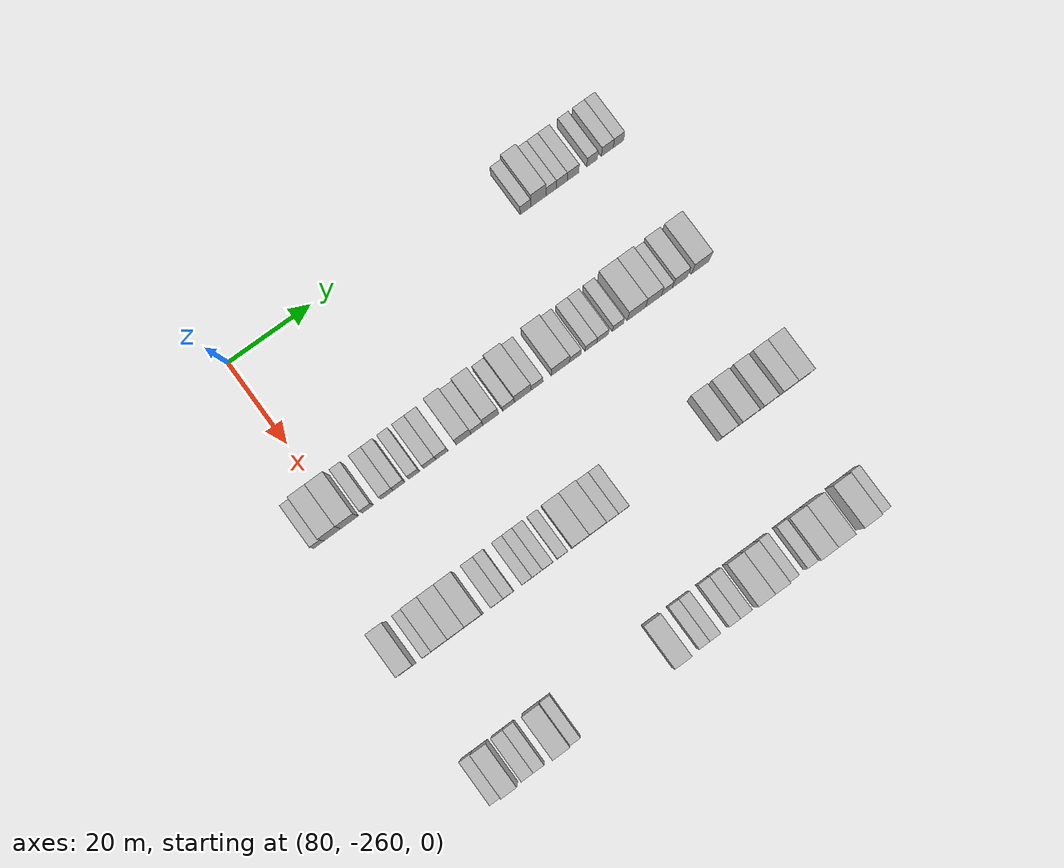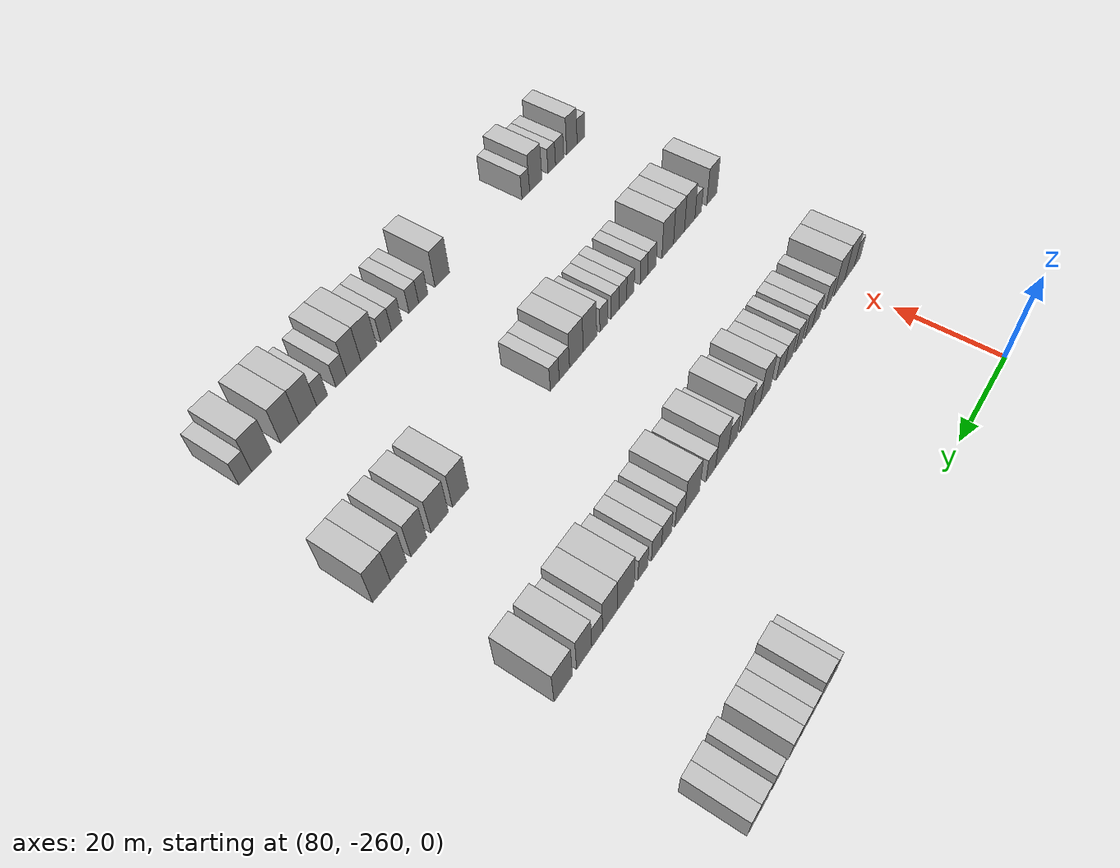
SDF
<sdf version="1.6">
 <world name="default">
  <model name="building_533">
   <static>1</static>
   <pose>85.0000 -194.1184 0 0.000000 0.000000 0.000000</pose>
   <link name="link">
    <pose>0 0 3.00 0 0 0</pose>
    <collision name="collision"><geometry><box><size>10.0000 2.6857 6.0000</size></box></geometry></collision>
    <visual name="visual">
     <cast_shadows>0</cast_shadows>
     <geometry><box><size>10.0000 2.6857 6.0000</size></box></geometry>
     <material>
      <script>
       <uri>model://HANNAS_wall/materials/scripts</uri>
       <uri>model://HANNAS_wall/materials/textures</uri>
       <name>vrc/HANNAS_wall</name>
      </script>
     </material>
    </visual>
   </link>
  </model>
  <model name="building_534">
   <static>1</static>
   <pose>85.0000 -190.9029 0 0.000000 0.000000 0.000000</pose>
   <link name="link">
    <pose>0 0 4.50 0 0 0</pose>
    <collision name="collision"><geometry><box><size>10.0000 3.7452 9.0000</size></box></geometry></collision>
    <visual name="visual">
     <cast_shadows>0</cast_shadows>
     <geometry><box><size>10.0000 3.7452 9.0000</size></box></geometry>
     <material>
      <script>
       <uri>model://HANNAS_wall/materials/scripts</uri>
       <uri>model://HANNAS_wall/materials/textures</uri>
       <name>vrc/HANNAS_wall</name>
      </script>
     </material>
    </visual>
   </link>
  </model>
  <model name="building_535">
   <static>1</static>
   <pose>85.0000 -187.7351 0 0.000000 0.000000 0.000000</pose>
   <link name="link">
    <pose>0 0 3.00 0 0 0</pose>
    <collision name="collision"><geometry><box><size>10.0000 2.5904 6.0000</size></box></geometry></collision>
    <visual name="visual">
     <cast_shadows>0</cast_shadows>
     <geometry><box><size>10.0000 2.5904 6.0000</size></box></geometry>
     <material>
      <script>
       <uri>model://HANNAS_wall/materials/scripts</uri>
       <uri>model://HANNAS_wall/materials/textures</uri>
       <name>vrc/HANNAS_wall</name>
      </script>
     </material>
    </visual>
   </link>
  </model>
  <model name="building_536">
   <static>1</static>
   <pose>85.0000 -185.1059 0 0.000000 0.000000 0.000000</pose>
   <link name="link">
    <pose>0 0 3.00 0 0 0</pose>
    <collision name="collision"><geometry><box><size>10.0000 2.6680 6.0000</size></box></geometry></collision>
    <visual name="visual">
     <cast_shadows>0</cast_shadows>
     <geometry><box><size>10.0000 2.6680 6.0000</size></box></geometry>
     <material>
      <script>
       <uri>model://HANNAS_wall/materials/scripts</uri>
       <uri>model://HANNAS_wall/materials/textures</uri>
       <name>vrc/HANNAS_wall</name>
      </script>
     </material>
    </visual>
   </link>
  </model>
  <model name="building_537">
   <static>1</static>
   <pose>85.0000 -182.3217 0 0.000000 0.000000 0.000000</pose>
   <link name="link">
    <pose>0 0 3.00 0 0 0</pose>
    <collision name="collision"><geometry><box><size>10.0000 2.9004 6.0000</size></box></geometry></collision>
    <visual name="visual">
     <cast_shadows>0</cast_shadows>
     <geometry><box><size>10.0000 2.9004 6.0000</size></box></geometry>
     <material>
      <script>
       <uri>model://HANNAS_wall/materials/scripts</uri>
       <uri>model://HANNAS_wall/materials/textures</uri>
       <name>vrc/HANNAS_wall</name>
      </script>
     </material>
    </visual>
   </link>
  </model>
  <model name="building_538">
   <static>1</static>
   <pose>85.0000 -177.5749 0 0.000000 0.000000 0.000000</pose>
   <link name="link">
    <pose>0 0 3.00 0 0 0</pose>
    <collision name="collision"><geometry><box><size>10.0000 2.5933 6.0000</size></box></geometry></collision>
    <visual name="visual">
     <cast_shadows>0</cast_shadows>
     <geometry><box><size>10.0000 2.5933 6.0000</size></box></geometry>
     <material>
      <script>
       <uri>model://HANNAS_wall/materials/scripts</uri>
       <uri>model://HANNAS_wall/materials/textures</uri>
       <name>vrc/HANNAS_wall</name>
      </script>
     </material>
    </visual>
   </link>
  </model>
  <model name="building_539">
   <static>1</static>
   <pose>85.0000 -173.7849 0 0.000000 0.000000 0.000000</pose>
   <link name="link">
    <pose>0 0 3.00 0 0 0</pose>
    <collision name="collision"><geometry><box><size>10.0000 2.9866 6.0000</size></box></geometry></collision>
    <visual name="visual">
     <cast_shadows>0</cast_shadows>
     <geometry><box><size>10.0000 2.9866 6.0000</size></box></geometry>
     <material>
      <script>
       <uri>model://HANNAS_wall/materials/scripts</uri>
       <uri>model://HANNAS_wall/materials/textures</uri>
       <name>vrc/HANNAS_wall</name>
      </script>
     </material>
    </visual>
   </link>
  </model>
  <model name="building_540">
   <static>1</static>
   <pose>85.0000 -170.9973 0 0.000000 0.000000 0.000000</pose>
   <link name="link">
    <pose>0 0 3.00 0 0 0</pose>
    <collision name="collision"><geometry><box><size>10.0000 2.5887 6.0000</size></box></geometry></collision>
    <visual name="visual">
     <cast_shadows>0</cast_shadows>
     <geometry><box><size>10.0000 2.5887 6.0000</size></box></geometry>
     <material>
      <script>
       <uri>model://HANNAS_wall/materials/scripts</uri>
       <uri>model://HANNAS_wall/materials/textures</uri>
       <name>vrc/HANNAS_wall</name>
      </script>
     </material>
    </visual>
   </link>
  </model>
  <model name="building_751">
   <static>1</static>
   <pose>115.0000 -266.2238 0 0.000000 0.000000 0.000000</pose>
   <link name="link">
    <pose>0 0 3.00 0 0 0</pose>
    <collision name="collision"><geometry><box><size>10.0000 2.4427 6.0000</size></box></geometry></collision>
    <visual name="visual">
     <cast_shadows>0</cast_shadows>
     <geometry><box><size>10.0000 2.4427 6.0000</size></box></geometry>
     <material>
      <script>
       <uri>model://HANNAS_wall/materials/scripts</uri>
       <uri>model://HANNAS_wall/materials/textures</uri>
       <name>vrc/HANNAS_wall</name>
      </script>
     </material>
    </visual>
   </link>
  </model>
  <model name="building_752">
   <static>1</static>
   <pose>115.0000 -262.9527 0 0.000000 0.000000 0.000000</pose>
   <link name="link">
    <pose>0 0 4.50 0 0 0</pose>
    <collision name="collision"><geometry><box><size>10.0000 4.0997 9.0000</size></box></geometry></collision>
    <visual name="visual">
     <cast_shadows>0</cast_shadows>
     <geometry><box><size>10.0000 4.0997 9.0000</size></box></geometry>
     <material>
      <script>
       <uri>model://HANNAS_wall/materials/scripts</uri>
       <uri>model://HANNAS_wall/materials/textures</uri>
       <name>vrc/HANNAS_wall</name>
      </script>
     </material>
    </visual>
   </link>
  </model>
  <model name="building_753">
   <static>1</static>
   <pose>115.0000 -258.8014 0 0.000000 0.000000 0.000000</pose>
   <link name="link">
    <pose>0 0 4.50 0 0 0</pose>
    <collision name="collision"><geometry><box><size>10.0000 4.2029 9.0000</size></box></geometry></collision>
    <visual name="visual">
     <cast_shadows>0</cast_shadows>
     <geometry><box><size>10.0000 4.2029 9.0000</size></box></geometry>
     <material>
      <script>
       <uri>model://HANNAS_wall/materials/scripts</uri>
       <uri>model://HANNAS_wall/materials/textures</uri>
       <name>vrc/HANNAS_wall</name>
      </script>
     </material>
    </visual>
   </link>
  </model>
  <model name="building_754">
   <static>1</static>
   <pose>115.0000 -254.4126 0 0.000000 0.000000 0.000000</pose>
   <link name="link">
    <pose>0 0 3.00 0 0 0</pose>
    <collision name="collision"><geometry><box><size>10.0000 2.5745 6.0000</size></box></geometry></collision>
    <visual name="visual">
     <cast_shadows>0</cast_shadows>
     <geometry><box><size>10.0000 2.5745 6.0000</size></box></geometry>
     <material>
      <script>
       <uri>model://HANNAS_wall/materials/scripts</uri>
       <uri>model://HANNAS_wall/materials/textures</uri>
       <name>vrc/HANNAS_wall</name>
      </script>
     </material>
    </visual>
   </link>
  </model>
  <model name="building_755">
   <static>1</static>
   <pose>115.0000 -249.6654 0 0.000000 0.000000 0.000000</pose>
   <link name="link">
    <pose>0 0 3.00 0 0 0</pose>
    <collision name="collision"><geometry><box><size>10.0000 2.9199 6.0000</size></box></geometry></collision>
    <visual name="visual">
     <cast_shadows>0</cast_shadows>
     <geometry><box><size>10.0000 2.9199 6.0000</size></box></geometry>
     <material>
      <script>
       <uri>model://HANNAS_wall/materials/scripts</uri>
       <uri>model://HANNAS_wall/materials/textures</uri>
       <name>vrc/HANNAS_wall</name>
      </script>
     </material>
    </visual>
   </link>
  </model>
  <model name="building_756">
   <static>1</static>
   <pose>115.0000 -246.8089 0 0.000000 0.000000 0.000000</pose>
   <link name="link">
    <pose>0 0 3.00 0 0 0</pose>
    <collision name="collision"><geometry><box><size>10.0000 2.7931 6.0000</size></box></geometry></collision>
    <visual name="visual">
     <cast_shadows>0</cast_shadows>
     <geometry><box><size>10.0000 2.7931 6.0000</size></box></geometry>
     <material>
      <script>
       <uri>model://HANNAS_wall/materials/scripts</uri>
       <uri>model://HANNAS_wall/materials/textures</uri>
       <name>vrc/HANNAS_wall</name>
      </script>
     </material>
    </visual>
   </link>
  </model>
  <model name="building_757">
   <static>1</static>
   <pose>115.0000 -243.1305 0 0.000000 0.000000 0.000000</pose>
   <link name="link">
    <pose>0 0 3.00 0 0 0</pose>
    <collision name="collision"><geometry><box><size>10.0000 2.5636 6.0000</size></box></geometry></collision>
    <visual name="visual">
     <cast_shadows>0</cast_shadows>
     <geometry><box><size>10.0000 2.5636 6.0000</size></box></geometry>
     <material>
      <script>
       <uri>model://HANNAS_wall/materials/scripts</uri>
       <uri>model://HANNAS_wall/materials/textures</uri>
       <name>vrc/HANNAS_wall</name>
      </script>
     </material>
    </visual>
   </link>
  </model>
  <model name="building_758">
   <static>1</static>
   <pose>115.0000 -239.3689 0 0.000000 0.000000 0.000000</pose>
   <link name="link">
    <pose>0 0 3.00 0 0 0</pose>
    <collision name="collision"><geometry><box><size>10.0000 2.9597 6.0000</size></box></geometry></collision>
    <visual name="visual">
     <cast_shadows>0</cast_shadows>
     <geometry><box><size>10.0000 2.9597 6.0000</size></box></geometry>
     <material>
      <script>
       <uri>model://HANNAS_wall/materials/scripts</uri>
       <uri>model://HANNAS_wall/materials/textures</uri>
       <name>vrc/HANNAS_wall</name>
      </script>
     </material>
    </visual>
   </link>
  </model>
  <model name="building_759">
   <static>1</static>
   <pose>115.0000 -236.4321 0 0.000000 0.000000 0.000000</pose>
   <link name="link">
    <pose>0 0 3.00 0 0 0</pose>
    <collision name="collision"><geometry><box><size>10.0000 2.9137 6.0000</size></box></geometry></collision>
    <visual name="visual">
     <cast_shadows>0</cast_shadows>
     <geometry><box><size>10.0000 2.9137 6.0000</size></box></geometry>
     <material>
      <script>
       <uri>model://HANNAS_wall/materials/scripts</uri>
       <uri>model://HANNAS_wall/materials/textures</uri>
       <name>vrc/HANNAS_wall</name>
      </script>
     </material>
    </visual>
   </link>
  </model>
  <model name="building_760">
   <static>1</static>
   <pose>115.0000 -231.1747 0 0.000000 0.000000 0.000000</pose>
   <link name="link">
    <pose>0 0 4.50 0 0 0</pose>
    <collision name="collision"><geometry><box><size>10.0000 3.6012 9.0000</size></box></geometry></collision>
    <visual name="visual">
     <cast_shadows>0</cast_shadows>
     <geometry><box><size>10.0000 3.6012 9.0000</size></box></geometry>
     <material>
      <script>
       <uri>model://HANNAS_wall/materials/scripts</uri>
       <uri>model://HANNAS_wall/materials/textures</uri>
       <name>vrc/HANNAS_wall</name>
      </script>
     </material>
    </visual>
   </link>
  </model>
  <model name="building_761">
   <static>1</static>
   <pose>115.0000 -227.8991 0 0.000000 0.000000 0.000000</pose>
   <link name="link">
    <pose>0 0 3.00 0 0 0</pose>
    <collision name="collision"><geometry><box><size>10.0000 2.9499 6.0000</size></box></geometry></collision>
    <visual name="visual">
     <cast_shadows>0</cast_shadows>
     <geometry><box><size>10.0000 2.9499 6.0000</size></box></geometry>
     <material>
      <script>
       <uri>model://HANNAS_wall/materials/scripts</uri>
       <uri>model://HANNAS_wall/materials/textures</uri>
       <name>vrc/HANNAS_wall</name>
      </script>
     </material>
    </visual>
   </link>
  </model>
  <model name="building_762">
   <static>1</static>
   <pose>115.0000 -224.5238 0 0.000000 0.000000 0.000000</pose>
   <link name="link">
    <pose>0 0 4.50 0 0 0</pose>
    <collision name="collision"><geometry><box><size>10.0000 3.8007 9.0000</size></box></geometry></collision>
    <visual name="visual">
     <cast_shadows>0</cast_shadows>
     <geometry><box><size>10.0000 3.8007 9.0000</size></box></geometry>
     <material>
      <script>
       <uri>model://HANNAS_wall/materials/scripts</uri>
       <uri>model://HANNAS_wall/materials/textures</uri>
       <name>vrc/HANNAS_wall</name>
      </script>
     </material>
    </visual>
   </link>
  </model>
  <model name="building_763">
   <static>1</static>
   <pose>115.0000 -220.1793 0 0.000000 0.000000 0.000000</pose>
   <link name="link">
    <pose>0 0 3.00 0 0 0</pose>
    <collision name="collision"><geometry><box><size>10.0000 2.8882 6.0000</size></box></geometry></collision>
    <visual name="visual">
     <cast_shadows>0</cast_shadows>
     <geometry><box><size>10.0000 2.8882 6.0000</size></box></geometry>
     <material>
      <script>
       <uri>model://HANNAS_wall/materials/scripts</uri>
       <uri>model://HANNAS_wall/materials/textures</uri>
       <name>vrc/HANNAS_wall</name>
      </script>
     </material>
    </visual>
   </link>
  </model>
  <model name="building_764">
   <static>1</static>
   <pose>115.0000 -216.6858 0 0.000000 0.000000 0.000000</pose>
   <link name="link">
    <pose>0 0 4.50 0 0 0</pose>
    <collision name="collision"><geometry><box><size>10.0000 4.0989 9.0000</size></box></geometry></collision>
    <visual name="visual">
     <cast_shadows>0</cast_shadows>
     <geometry><box><size>10.0000 4.0989 9.0000</size></box></geometry>
     <material>
      <script>
       <uri>model://HANNAS_wall/materials/scripts</uri>
       <uri>model://HANNAS_wall/materials/textures</uri>
       <name>vrc/HANNAS_wall</name>
      </script>
     </material>
    </visual>
   </link>
  </model>
  <model name="building_765">
   <static>1</static>
   <pose>115.0000 -213.1814 0 0.000000 0.000000 0.000000</pose>
   <link name="link">
    <pose>0 0 3.00 0 0 0</pose>
    <collision name="collision"><geometry><box><size>10.0000 2.9099 6.0000</size></box></geometry></collision>
    <visual name="visual">
     <cast_shadows>0</cast_shadows>
     <geometry><box><size>10.0000 2.9099 6.0000</size></box></geometry>
     <material>
      <script>
       <uri>model://HANNAS_wall/materials/scripts</uri>
       <uri>model://HANNAS_wall/materials/textures</uri>
       <name>vrc/HANNAS_wall</name>
      </script>
     </material>
    </visual>
   </link>
  </model>
  <model name="building_766">
   <static>1</static>
   <pose>115.0000 -207.4964 0 0.000000 0.000000 0.000000</pose>
   <link name="link">
    <pose>0 0 4.50 0 0 0</pose>
    <collision name="collision"><geometry><box><size>10.0000 4.4602 9.0000</size></box></geometry></collision>
    <visual name="visual">
     <cast_shadows>0</cast_shadows>
     <geometry><box><size>10.0000 4.4602 9.0000</size></box></geometry>
     <material>
      <script>
       <uri>model://HANNAS_wall/materials/scripts</uri>
       <uri>model://HANNAS_wall/materials/textures</uri>
       <name>vrc/HANNAS_wall</name>
      </script>
     </material>
    </visual>
   </link>
  </model>
  <model name="building_767">
   <static>1</static>
   <pose>115.0000 -203.8262 0 0.000000 0.000000 0.000000</pose>
   <link name="link">
    <pose>0 0 3.00 0 0 0</pose>
    <collision name="collision"><geometry><box><size>10.0000 2.8802 6.0000</size></box></geometry></collision>
    <visual name="visual">
     <cast_shadows>0</cast_shadows>
     <geometry><box><size>10.0000 2.8802 6.0000</size></box></geometry>
     <material>
      <script>
       <uri>model://HANNAS_wall/materials/scripts</uri>
       <uri>model://HANNAS_wall/materials/textures</uri>
       <name>vrc/HANNAS_wall</name>
      </script>
     </material>
    </visual>
   </link>
  </model>
  <model name="building_768">
   <static>1</static>
   <pose>115.0000 -199.9471 0 0.000000 0.000000 0.000000</pose>
   <link name="link">
    <pose>0 0 3.00 0 0 0</pose>
    <collision name="collision"><geometry><box><size>10.0000 2.8779 6.0000</size></box></geometry></collision>
    <visual name="visual">
     <cast_shadows>0</cast_shadows>
     <geometry><box><size>10.0000 2.8779 6.0000</size></box></geometry>
     <material>
      <script>
       <uri>model://HANNAS_wall/materials/scripts</uri>
       <uri>model://HANNAS_wall/materials/textures</uri>
       <name>vrc/HANNAS_wall</name>
      </script>
     </material>
    </visual>
   </link>
  </model>
  <model name="building_769">
   <static>1</static>
   <pose>115.0000 -197.0867 0 0.000000 0.000000 0.000000</pose>
   <link name="link">
    <pose>0 0 3.00 0 0 0</pose>
    <collision name="collision"><geometry><box><size>10.0000 2.8430 6.0000</size></box></geometry></collision>
    <visual name="visual">
     <cast_shadows>0</cast_shadows>
     <geometry><box><size>10.0000 2.8430 6.0000</size></box></geometry>
     <material>
      <script>
       <uri>model://HANNAS_wall/materials/scripts</uri>
       <uri>model://HANNAS_wall/materials/textures</uri>
       <name>vrc/HANNAS_wall</name>
      </script>
     </material>
    </visual>
   </link>
  </model>
  <model name="building_770">
   <static>1</static>
   <pose>115.0000 -193.3079 0 0.000000 0.000000 0.000000</pose>
   <link name="link">
    <pose>0 0 3.00 0 0 0</pose>
    <collision name="collision"><geometry><box><size>10.0000 2.7146 6.0000</size></box></geometry></collision>
    <visual name="visual">
     <cast_shadows>0</cast_shadows>
     <geometry><box><size>10.0000 2.7146 6.0000</size></box></geometry>
     <material>
      <script>
       <uri>model://HANNAS_wall/materials/scripts</uri>
       <uri>model://HANNAS_wall/materials/textures</uri>
       <name>vrc/HANNAS_wall</name>
      </script>
     </material>
    </visual>
   </link>
  </model>
  <model name="building_771">
   <static>1</static>
   <pose>115.0000 -188.7145 0 0.000000 0.000000 0.000000</pose>
   <link name="link">
    <pose>0 0 4.50 0 0 0</pose>
    <collision name="collision"><geometry><box><size>10.0000 4.4723 9.0000</size></box></geometry></collision>
    <visual name="visual">
     <cast_shadows>0</cast_shadows>
     <geometry><box><size>10.0000 4.4723 9.0000</size></box></geometry>
     <material>
      <script>
       <uri>model://HANNAS_wall/materials/scripts</uri>
       <uri>model://HANNAS_wall/materials/textures</uri>
       <name>vrc/HANNAS_wall</name>
      </script>
     </material>
    </visual>
   </link>
  </model>
  <model name="building_772">
   <static>1</static>
   <pose>115.0000 -184.5391 0 0.000000 0.000000 0.000000</pose>
   <link name="link">
    <pose>0 0 4.50 0 0 0</pose>
    <collision name="collision"><geometry><box><size>10.0000 3.8784 9.0000</size></box></geometry></collision>
    <visual name="visual">
     <cast_shadows>0</cast_shadows>
     <geometry><box><size>10.0000 3.8784 9.0000</size></box></geometry>
     <material>
      <script>
       <uri>model://HANNAS_wall/materials/scripts</uri>
       <uri>model://HANNAS_wall/materials/textures</uri>
       <name>vrc/HANNAS_wall</name>
      </script>
     </material>
    </visual>
   </link>
  </model>
  <model name="building_773">
   <static>1</static>
   <pose>115.0000 -181.2228 0 0.000000 0.000000 0.000000</pose>
   <link name="link">
    <pose>0 0 3.00 0 0 0</pose>
    <collision name="collision"><geometry><box><size>10.0000 2.7543 6.0000</size></box></geometry></collision>
    <visual name="visual">
     <cast_shadows>0</cast_shadows>
     <geometry><box><size>10.0000 2.7543 6.0000</size></box></geometry>
     <material>
      <script>
       <uri>model://HANNAS_wall/materials/scripts</uri>
       <uri>model://HANNAS_wall/materials/textures</uri>
       <name>vrc/HANNAS_wall</name>
      </script>
     </material>
    </visual>
   </link>
  </model>
  <model name="building_774">
   <static>1</static>
   <pose>115.0000 -177.9729 0 0.000000 0.000000 0.000000</pose>
   <link name="link">
    <pose>0 0 4.50 0 0 0</pose>
    <collision name="collision"><geometry><box><size>10.0000 3.7454 9.0000</size></box></geometry></collision>
    <visual name="visual">
     <cast_shadows>0</cast_shadows>
     <geometry><box><size>10.0000 3.7454 9.0000</size></box></geometry>
     <material>
      <script>
       <uri>model://HANNAS_wall/materials/scripts</uri>
       <uri>model://HANNAS_wall/materials/textures</uri>
       <name>vrc/HANNAS_wall</name>
      </script>
     </material>
    </visual>
   </link>
  </model>
  <model name="building_775">
   <static>1</static>
   <pose>115.0000 -172.8967 0 0.000000 0.000000 0.000000</pose>
   <link name="link">
    <pose>0 0 4.50 0 0 0</pose>
    <collision name="collision"><geometry><box><size>10.0000 4.4070 9.0000</size></box></geometry></collision>
    <visual name="visual">
     <cast_shadows>0</cast_shadows>
     <geometry><box><size>10.0000 4.4070 9.0000</size></box></geometry>
     <material>
      <script>
       <uri>model://HANNAS_wall/materials/scripts</uri>
       <uri>model://HANNAS_wall/materials/textures</uri>
       <name>vrc/HANNAS_wall</name>
      </script>
     </material>
    </visual>
   </link>
  </model>
  <model name="building_981">
   <static>1</static>
   <pose>145.0000 -266.2483 0 0.000000 0.000000 0.000000</pose>
   <link name="link">
    <pose>0 0 4.50 0 0 0</pose>
    <collision name="collision"><geometry><box><size>10.0000 3.8495 9.0000</size></box></geometry></collision>
    <visual name="visual">
     <cast_shadows>0</cast_shadows>
     <geometry><box><size>10.0000 3.8495 9.0000</size></box></geometry>
     <material>
      <script>
       <uri>model://HANNAS_wall/materials/scripts</uri>
       <uri>model://HANNAS_wall/materials/textures</uri>
       <name>vrc/HANNAS_wall</name>
      </script>
     </material>
    </visual>
   </link>
  </model>
  <model name="building_982">
   <static>1</static>
   <pose>145.0000 -261.1225 0 0.000000 0.000000 0.000000</pose>
   <link name="link">
    <pose>0 0 3.00 0 0 0</pose>
    <collision name="collision"><geometry><box><size>10.0000 2.4021 6.0000</size></box></geometry></collision>
    <visual name="visual">
     <cast_shadows>0</cast_shadows>
     <geometry><box><size>10.0000 2.4021 6.0000</size></box></geometry>
     <material>
      <script>
       <uri>model://HANNAS_wall/materials/scripts</uri>
       <uri>model://HANNAS_wall/materials/textures</uri>
       <name>vrc/HANNAS_wall</name>
      </script>
     </material>
    </visual>
   </link>
  </model>
  <model name="building_983">
   <static>1</static>
   <pose>145.0000 -258.0105 0 0.000000 0.000000 0.000000</pose>
   <link name="link">
    <pose>0 0 4.50 0 0 0</pose>
    <collision name="collision"><geometry><box><size>10.0000 3.8217 9.0000</size></box></geometry></collision>
    <visual name="visual">
     <cast_shadows>0</cast_shadows>
     <geometry><box><size>10.0000 3.8217 9.0000</size></box></geometry>
     <material>
      <script>
       <uri>model://HANNAS_wall/materials/scripts</uri>
       <uri>model://HANNAS_wall/materials/textures</uri>
       <name>vrc/HANNAS_wall</name>
      </script>
     </material>
    </visual>
   </link>
  </model>
  <model name="building_984">
   <static>1</static>
   <pose>145.0000 -254.1389 0 0.000000 0.000000 0.000000</pose>
   <link name="link">
    <pose>0 0 4.50 0 0 0</pose>
    <collision name="collision"><geometry><box><size>10.0000 3.9215 9.0000</size></box></geometry></collision>
    <visual name="visual">
     <cast_shadows>0</cast_shadows>
     <geometry><box><size>10.0000 3.9215 9.0000</size></box></geometry>
     <material>
      <script>
       <uri>model://HANNAS_wall/materials/scripts</uri>
       <uri>model://HANNAS_wall/materials/textures</uri>
       <name>vrc/HANNAS_wall</name>
      </script>
     </material>
    </visual>
   </link>
  </model>
  <model name="building_985">
   <static>1</static>
   <pose>145.0000 -250.1448 0 0.000000 0.000000 0.000000</pose>
   <link name="link">
    <pose>0 0 4.50 0 0 0</pose>
    <collision name="collision"><geometry><box><size>10.0000 4.0668 9.0000</size></box></geometry></collision>
    <visual name="visual">
     <cast_shadows>0</cast_shadows>
     <geometry><box><size>10.0000 4.0668 9.0000</size></box></geometry>
     <material>
      <script>
       <uri>model://HANNAS_wall/materials/scripts</uri>
       <uri>model://HANNAS_wall/materials/textures</uri>
       <name>vrc/HANNAS_wall</name>
      </script>
     </material>
    </visual>
   </link>
  </model>
  <model name="building_986">
   <static>1</static>
   <pose>145.0000 -244.6438 0 0.000000 0.000000 0.000000</pose>
   <link name="link">
    <pose>0 0 3.00 0 0 0</pose>
    <collision name="collision"><geometry><box><size>10.0000 2.9352 6.0000</size></box></geometry></collision>
    <visual name="visual">
     <cast_shadows>0</cast_shadows>
     <geometry><box><size>10.0000 2.9352 6.0000</size></box></geometry>
     <material>
      <script>
       <uri>model://HANNAS_wall/materials/scripts</uri>
       <uri>model://HANNAS_wall/materials/textures</uri>
       <name>vrc/HANNAS_wall</name>
      </script>
     </material>
    </visual>
   </link>
  </model>
  <model name="building_987">
   <static>1</static>
   <pose>145.0000 -241.9376 0 0.000000 0.000000 0.000000</pose>
   <link name="link">
    <pose>0 0 3.00 0 0 0</pose>
    <collision name="collision"><geometry><box><size>10.0000 2.4772 6.0000</size></box></geometry></collision>
    <visual name="visual">
     <cast_shadows>0</cast_shadows>
     <geometry><box><size>10.0000 2.4772 6.0000</size></box></geometry>
     <material>
      <script>
       <uri>model://HANNAS_wall/materials/scripts</uri>
       <uri>model://HANNAS_wall/materials/textures</uri>
       <name>vrc/HANNAS_wall</name>
      </script>
     </material>
    </visual>
   </link>
  </model>
  <model name="building_988">
   <static>1</static>
   <pose>145.0000 -237.4867 0 0.000000 0.000000 0.000000</pose>
   <link name="link">
    <pose>0 0 3.00 0 0 0</pose>
    <collision name="collision"><geometry><box><size>10.0000 2.4246 6.0000</size></box></geometry></collision>
    <visual name="visual">
     <cast_shadows>0</cast_shadows>
     <geometry><box><size>10.0000 2.4246 6.0000</size></box></geometry>
     <material>
      <script>
       <uri>model://HANNAS_wall/materials/scripts</uri>
       <uri>model://HANNAS_wall/materials/textures</uri>
       <name>vrc/HANNAS_wall</name>
      </script>
     </material>
    </visual>
   </link>
  </model>
  <model name="building_989">
   <static>1</static>
   <pose>145.0000 -235.0406 0 0.000000 0.000000 0.000000</pose>
   <link name="link">
    <pose>0 0 3.00 0 0 0</pose>
    <collision name="collision"><geometry><box><size>10.0000 2.4674 6.0000</size></box></geometry></collision>
    <visual name="visual">
     <cast_shadows>0</cast_shadows>
     <geometry><box><size>10.0000 2.4674 6.0000</size></box></geometry>
     <material>
      <script>
       <uri>model://HANNAS_wall/materials/scripts</uri>
       <uri>model://HANNAS_wall/materials/textures</uri>
       <name>vrc/HANNAS_wall</name>
      </script>
     </material>
    </visual>
   </link>
  </model>
  <model name="building_990">
   <static>1</static>
   <pose>145.0000 -232.5291 0 0.000000 0.000000 0.000000</pose>
   <link name="link">
    <pose>0 0 3.00 0 0 0</pose>
    <collision name="collision"><geometry><box><size>10.0000 2.5556 6.0000</size></box></geometry></collision>
    <visual name="visual">
     <cast_shadows>0</cast_shadows>
     <geometry><box><size>10.0000 2.5556 6.0000</size></box></geometry>
     <material>
      <script>
       <uri>model://HANNAS_wall/materials/scripts</uri>
       <uri>model://HANNAS_wall/materials/textures</uri>
       <name>vrc/HANNAS_wall</name>
      </script>
     </material>
    </visual>
   </link>
  </model>
  <model name="building_991">
   <static>1</static>
   <pose>145.0000 -229.0003 0 0.000000 0.000000 0.000000</pose>
   <link name="link">
    <pose>0 0 3.00 0 0 0</pose>
    <collision name="collision"><geometry><box><size>10.0000 2.5021 6.0000</size></box></geometry></collision>
    <visual name="visual">
     <cast_shadows>0</cast_shadows>
     <geometry><box><size>10.0000 2.5021 6.0000</size></box></geometry>
     <material>
      <script>
       <uri>model://HANNAS_wall/materials/scripts</uri>
       <uri>model://HANNAS_wall/materials/textures</uri>
       <name>vrc/HANNAS_wall</name>
      </script>
     </material>
    </visual>
   </link>
  </model>
  <model name="building_992">
   <static>1</static>
   <pose>145.0000 -224.6979 0 0.000000 0.000000 0.000000</pose>
   <link name="link">
    <pose>0 0 4.50 0 0 0</pose>
    <collision name="collision"><geometry><box><size>10.0000 4.1026 9.0000</size></box></geometry></collision>
    <visual name="visual">
     <cast_shadows>0</cast_shadows>
     <geometry><box><size>10.0000 4.1026 9.0000</size></box></geometry>
     <material>
      <script>
       <uri>model://HANNAS_wall/materials/scripts</uri>
       <uri>model://HANNAS_wall/materials/textures</uri>
       <name>vrc/HANNAS_wall</name>
      </script>
     </material>
    </visual>
   </link>
  </model>
  <model name="building_993">
   <static>1</static>
   <pose>145.0000 -220.5997 0 0.000000 0.000000 0.000000</pose>
   <link name="link">
    <pose>0 0 4.50 0 0 0</pose>
    <collision name="collision"><geometry><box><size>10.0000 4.0939 9.0000</size></box></geometry></collision>
    <visual name="visual">
     <cast_shadows>0</cast_shadows>
     <geometry><box><size>10.0000 4.0939 9.0000</size></box></geometry>
     <material>
      <script>
       <uri>model://HANNAS_wall/materials/scripts</uri>
       <uri>model://HANNAS_wall/materials/textures</uri>
       <name>vrc/HANNAS_wall</name>
      </script>
     </material>
    </visual>
   </link>
  </model>
  <model name="building_994">
   <static>1</static>
   <pose>145.0000 -217.0558 0 0.000000 0.000000 0.000000</pose>
   <link name="link">
    <pose>0 0 3.00 0 0 0</pose>
    <collision name="collision"><geometry><box><size>10.0000 2.9939 6.0000</size></box></geometry></collision>
    <visual name="visual">
     <cast_shadows>0</cast_shadows>
     <geometry><box><size>10.0000 2.9939 6.0000</size></box></geometry>
     <material>
      <script>
       <uri>model://HANNAS_wall/materials/scripts</uri>
       <uri>model://HANNAS_wall/materials/textures</uri>
       <name>vrc/HANNAS_wall</name>
      </script>
     </material>
    </visual>
   </link>
  </model>
  <model name="building_995">
   <static>1</static>
   <pose>145.0000 -214.2667 0 0.000000 0.000000 0.000000</pose>
   <link name="link">
    <pose>0 0 3.00 0 0 0</pose>
    <collision name="collision"><geometry><box><size>10.0000 2.5842 6.0000</size></box></geometry></collision>
    <visual name="visual">
     <cast_shadows>0</cast_shadows>
     <geometry><box><size>10.0000 2.5842 6.0000</size></box></geometry>
     <material>
      <script>
       <uri>model://HANNAS_wall/materials/scripts</uri>
       <uri>model://HANNAS_wall/materials/textures</uri>
       <name>vrc/HANNAS_wall</name>
      </script>
     </material>
    </visual>
   </link>
  </model>
  <model name="building_996">
   <static>1</static>
   <pose>145.0000 -189.0234 0 0.000000 0.000000 0.000000</pose>
   <link name="link">
    <pose>0 0 4.50 0 0 0</pose>
    <collision name="collision"><geometry><box><size>10.0000 3.9675 9.0000</size></box></geometry></collision>
    <visual name="visual">
     <cast_shadows>0</cast_shadows>
     <geometry><box><size>10.0000 3.9675 9.0000</size></box></geometry>
     <material>
      <script>
       <uri>model://HANNAS_wall/materials/scripts</uri>
       <uri>model://HANNAS_wall/materials/textures</uri>
       <name>vrc/HANNAS_wall</name>
      </script>
     </material>
    </visual>
   </link>
  </model>
  <model name="building_997">
   <static>1</static>
   <pose>145.0000 -183.9371 0 0.000000 0.000000 0.000000</pose>
   <link name="link">
    <pose>0 0 4.50 0 0 0</pose>
    <collision name="collision"><geometry><box><size>10.0000 4.2050 9.0000</size></box></geometry></collision>
    <visual name="visual">
     <cast_shadows>0</cast_shadows>
     <geometry><box><size>10.0000 4.2050 9.0000</size></box></geometry>
     <material>
      <script>
       <uri>model://HANNAS_wall/materials/scripts</uri>
       <uri>model://HANNAS_wall/materials/textures</uri>
       <name>vrc/HANNAS_wall</name>
      </script>
     </material>
    </visual>
   </link>
  </model>
  <model name="building_998">
   <static>1</static>
   <pose>145.0000 -178.9882 0 0.000000 0.000000 0.000000</pose>
   <link name="link">
    <pose>0 0 4.50 0 0 0</pose>
    <collision name="collision"><geometry><box><size>10.0000 3.6929 9.0000</size></box></geometry></collision>
    <visual name="visual">
     <cast_shadows>0</cast_shadows>
     <geometry><box><size>10.0000 3.6929 9.0000</size></box></geometry>
     <material>
      <script>
       <uri>model://HANNAS_wall/materials/scripts</uri>
       <uri>model://HANNAS_wall/materials/textures</uri>
       <name>vrc/HANNAS_wall</name>
      </script>
     </material>
    </visual>
   </link>
  </model>
  <model name="building_999">
   <static>1</static>
   <pose>145.0000 -174.3217 0 0.000000 0.000000 0.000000</pose>
   <link name="link">
    <pose>0 0 4.50 0 0 0</pose>
    <collision name="collision"><geometry><box><size>10.0000 3.6400 9.0000</size></box></geometry></collision>
    <visual name="visual">
     <cast_shadows>0</cast_shadows>
     <geometry><box><size>10.0000 3.6400 9.0000</size></box></geometry>
     <material>
      <script>
       <uri>model://HANNAS_wall/materials/scripts</uri>
       <uri>model://HANNAS_wall/materials/textures</uri>
       <name>vrc/HANNAS_wall</name>
      </script>
     </material>
    </visual>
   </link>
  </model>
  <model name="building_1000">
   <static>1</static>
   <pose>145.0000 -170.5156 0 0.000000 0.000000 0.000000</pose>
   <link name="link">
    <pose>0 0 4.50 0 0 0</pose>
    <collision name="collision"><geometry><box><size>10.0000 3.9722 9.0000</size></box></geometry></collision>
    <visual name="visual">
     <cast_shadows>0</cast_shadows>
     <geometry><box><size>10.0000 3.9722 9.0000</size></box></geometry>
     <material>
      <script>
       <uri>model://HANNAS_wall/materials/scripts</uri>
       <uri>model://HANNAS_wall/materials/textures</uri>
       <name>vrc/HANNAS_wall</name>
      </script>
     </material>
    </visual>
   </link>
  </model>
  <model name="building_1201">
   <static>1</static>
   <pose>175.0000 -266.7498 0 0.000000 0.000000 0.000000</pose>
   <link name="link">
    <pose>0 0 3.00 0 0 0</pose>
    <collision name="collision"><geometry><box><size>10.0000 2.7709 6.0000</size></box></geometry></collision>
    <visual name="visual">
     <cast_shadows>0</cast_shadows>
     <geometry><box><size>10.0000 2.7709 6.0000</size></box></geometry>
     <material>
      <script>
       <uri>model://HANNAS_wall/materials/scripts</uri>
       <uri>model://HANNAS_wall/materials/textures</uri>
       <name>vrc/HANNAS_wall</name>
      </script>
     </material>
    </visual>
   </link>
  </model>
  <model name="building_1202">
   <static>1</static>
   <pose>175.0000 -263.5325 0 0.000000 0.000000 0.000000</pose>
   <link name="link">
    <pose>0 0 4.50 0 0 0</pose>
    <collision name="collision"><geometry><box><size>10.0000 3.6638 9.0000</size></box></geometry></collision>
    <visual name="visual">
     <cast_shadows>0</cast_shadows>
     <geometry><box><size>10.0000 3.6638 9.0000</size></box></geometry>
     <material>
      <script>
       <uri>model://HANNAS_wall/materials/scripts</uri>
       <uri>model://HANNAS_wall/materials/textures</uri>
       <name>vrc/HANNAS_wall</name>
      </script>
     </material>
    </visual>
   </link>
  </model>
  <model name="building_1203">
   <static>1</static>
   <pose>175.0000 -259.2955 0 0.000000 0.000000 0.000000</pose>
   <link name="link">
    <pose>0 0 3.00 0 0 0</pose>
    <collision name="collision"><geometry><box><size>10.0000 2.8103 6.0000</size></box></geometry></collision>
    <visual name="visual">
     <cast_shadows>0</cast_shadows>
     <geometry><box><size>10.0000 2.8103 6.0000</size></box></geometry>
     <material>
      <script>
       <uri>model://HANNAS_wall/materials/scripts</uri>
       <uri>model://HANNAS_wall/materials/textures</uri>
       <name>vrc/HANNAS_wall</name>
      </script>
     </material>
    </visual>
   </link>
  </model>
  <model name="building_1204">
   <static>1</static>
   <pose>175.0000 -256.6165 0 0.000000 0.000000 0.000000</pose>
   <link name="link">
    <pose>0 0 3.00 0 0 0</pose>
    <collision name="collision"><geometry><box><size>10.0000 2.5477 6.0000</size></box></geometry></collision>
    <visual name="visual">
     <cast_shadows>0</cast_shadows>
     <geometry><box><size>10.0000 2.5477 6.0000</size></box></geometry>
     <material>
      <script>
       <uri>model://HANNAS_wall/materials/scripts</uri>
       <uri>model://HANNAS_wall/materials/textures</uri>
       <name>vrc/HANNAS_wall</name>
      </script>
     </material>
    </visual>
   </link>
  </model>
  <model name="building_1205">
   <static>1</static>
   <pose>175.0000 -251.2926 0 0.000000 0.000000 0.000000</pose>
   <link name="link">
    <pose>0 0 4.50 0 0 0</pose>
    <collision name="collision"><geometry><box><size>10.0000 4.1001 9.0000</size></box></geometry></collision>
    <visual name="visual">
     <cast_shadows>0</cast_shadows>
     <geometry><box><size>10.0000 4.1001 9.0000</size></box></geometry>
     <material>
      <script>
       <uri>model://HANNAS_wall/materials/scripts</uri>
       <uri>model://HANNAS_wall/materials/textures</uri>
       <name>vrc/HANNAS_wall</name>
      </script>
     </material>
    </visual>
   </link>
  </model>
  <model name="building_1206">
   <static>1</static>
   <pose>175.0000 -248.0025 0 0.000000 0.000000 0.000000</pose>
   <link name="link">
    <pose>0 0 3.00 0 0 0</pose>
    <collision name="collision"><geometry><box><size>10.0000 2.4801 6.0000</size></box></geometry></collision>
    <visual name="visual">
     <cast_shadows>0</cast_shadows>
     <geometry><box><size>10.0000 2.4801 6.0000</size></box></geometry>
     <material>
      <script>
       <uri>model://HANNAS_wall/materials/scripts</uri>
       <uri>model://HANNAS_wall/materials/textures</uri>
       <name>vrc/HANNAS_wall</name>
      </script>
     </material>
    </visual>
   </link>
  </model>
  <model name="building_1207">
   <static>1</static>
   <pose>175.0000 -222.5991 0 0.000000 0.000000 0.000000</pose>
   <link name="link">
    <pose>0 0 4.50 0 0 0</pose>
    <collision name="collision"><geometry><box><size>10.0000 4.1089 9.0000</size></box></geometry></collision>
    <visual name="visual">
     <cast_shadows>0</cast_shadows>
     <geometry><box><size>10.0000 4.1089 9.0000</size></box></geometry>
     <material>
      <script>
       <uri>model://HANNAS_wall/materials/scripts</uri>
       <uri>model://HANNAS_wall/materials/textures</uri>
       <name>vrc/HANNAS_wall</name>
      </script>
     </material>
    </visual>
   </link>
  </model>
  <model name="building_1208">
   <static>1</static>
   <pose>175.0000 -217.2726 0 0.000000 0.000000 0.000000</pose>
   <link name="link">
    <pose>0 0 3.00 0 0 0</pose>
    <collision name="collision"><geometry><box><size>10.0000 2.5440 6.0000</size></box></geometry></collision>
    <visual name="visual">
     <cast_shadows>0</cast_shadows>
     <geometry><box><size>10.0000 2.5440 6.0000</size></box></geometry>
     <material>
      <script>
       <uri>model://HANNAS_wall/materials/scripts</uri>
       <uri>model://HANNAS_wall/materials/textures</uri>
       <name>vrc/HANNAS_wall</name>
      </script>
     </material>
    </visual>
   </link>
  </model>
  <model name="building_1209">
   <static>1</static>
   <pose>175.0000 -214.6915 0 0.000000 0.000000 0.000000</pose>
   <link name="link">
    <pose>0 0 3.00 0 0 0</pose>
    <collision name="collision"><geometry><box><size>10.0000 2.6182 6.0000</size></box></geometry></collision>
    <visual name="visual">
     <cast_shadows>0</cast_shadows>
     <geometry><box><size>10.0000 2.6182 6.0000</size></box></geometry>
     <material>
      <script>
       <uri>model://HANNAS_wall/materials/scripts</uri>
       <uri>model://HANNAS_wall/materials/textures</uri>
       <name>vrc/HANNAS_wall</name>
      </script>
     </material>
    </visual>
   </link>
  </model>
  <model name="building_1210">
   <static>1</static>
   <pose>175.0000 -210.0160 0 0.000000 0.000000 0.000000</pose>
   <link name="link">
    <pose>0 0 3.00 0 0 0</pose>
    <collision name="collision"><geometry><box><size>10.0000 2.7330 6.0000</size></box></geometry></collision>
    <visual name="visual">
     <cast_shadows>0</cast_shadows>
     <geometry><box><size>10.0000 2.7330 6.0000</size></box></geometry>
     <material>
      <script>
       <uri>model://HANNAS_wall/materials/scripts</uri>
       <uri>model://HANNAS_wall/materials/textures</uri>
       <name>vrc/HANNAS_wall</name>
      </script>
     </material>
    </visual>
   </link>
  </model>
  <model name="building_1211">
   <static>1</static>
   <pose>175.0000 -207.2354 0 0.000000 0.000000 0.000000</pose>
   <link name="link">
    <pose>0 0 3.00 0 0 0</pose>
    <collision name="collision"><geometry><box><size>10.0000 2.8282 6.0000</size></box></geometry></collision>
    <visual name="visual">
     <cast_shadows>0</cast_shadows>
     <geometry><box><size>10.0000 2.8282 6.0000</size></box></geometry>
     <material>
      <script>
       <uri>model://HANNAS_wall/materials/scripts</uri>
       <uri>model://HANNAS_wall/materials/textures</uri>
       <name>vrc/HANNAS_wall</name>
      </script>
     </material>
    </visual>
   </link>
  </model>
  <model name="building_1212">
   <static>1</static>
   <pose>175.0000 -202.7999 0 0.000000 0.000000 0.000000</pose>
   <link name="link">
    <pose>0 0 4.50 0 0 0</pose>
    <collision name="collision"><geometry><box><size>10.0000 4.0429 9.0000</size></box></geometry></collision>
    <visual name="visual">
     <cast_shadows>0</cast_shadows>
     <geometry><box><size>10.0000 4.0429 9.0000</size></box></geometry>
     <material>
      <script>
       <uri>model://HANNAS_wall/materials/scripts</uri>
       <uri>model://HANNAS_wall/materials/textures</uri>
       <name>vrc/HANNAS_wall</name>
      </script>
     </material>
    </visual>
   </link>
  </model>
  <model name="building_1213">
   <static>1</static>
   <pose>175.0000 -198.9702 0 0.000000 0.000000 0.000000</pose>
   <link name="link">
    <pose>0 0 4.50 0 0 0</pose>
    <collision name="collision"><geometry><box><size>10.0000 3.6165 9.0000</size></box></geometry></collision>
    <visual name="visual">
     <cast_shadows>0</cast_shadows>
     <geometry><box><size>10.0000 3.6165 9.0000</size></box></geometry>
     <material>
      <script>
       <uri>model://HANNAS_wall/materials/scripts</uri>
       <uri>model://HANNAS_wall/materials/textures</uri>
       <name>vrc/HANNAS_wall</name>
      </script>
     </material>
    </visual>
   </link>
  </model>
  <model name="building_1214">
   <static>1</static>
   <pose>175.0000 -195.8426 0 0.000000 0.000000 0.000000</pose>
   <link name="link">
    <pose>0 0 3.00 0 0 0</pose>
    <collision name="collision"><geometry><box><size>10.0000 2.6387 6.0000</size></box></geometry></collision>
    <visual name="visual">
     <cast_shadows>0</cast_shadows>
     <geometry><box><size>10.0000 2.6387 6.0000</size></box></geometry>
     <material>
      <script>
       <uri>model://HANNAS_wall/materials/scripts</uri>
       <uri>model://HANNAS_wall/materials/textures</uri>
       <name>vrc/HANNAS_wall</name>
      </script>
     </material>
    </visual>
   </link>
  </model>
  <model name="building_1215">
   <static>1</static>
   <pose>175.0000 -191.2250 0 0.000000 0.000000 0.000000</pose>
   <link name="link">
    <pose>0 0 3.00 0 0 0</pose>
    <collision name="collision"><geometry><box><size>10.0000 2.5964 6.0000</size></box></geometry></collision>
    <visual name="visual">
     <cast_shadows>0</cast_shadows>
     <geometry><box><size>10.0000 2.5964 6.0000</size></box></geometry>
     <material>
      <script>
       <uri>model://HANNAS_wall/materials/scripts</uri>
       <uri>model://HANNAS_wall/materials/textures</uri>
       <name>vrc/HANNAS_wall</name>
      </script>
     </material>
    </visual>
   </link>
  </model>
  <model name="building_1216">
   <static>1</static>
   <pose>175.0000 -187.8456 0 0.000000 0.000000 0.000000</pose>
   <link name="link">
    <pose>0 0 4.50 0 0 0</pose>
    <collision name="collision"><geometry><box><size>10.0000 4.1625 9.0000</size></box></geometry></collision>
    <visual name="visual">
     <cast_shadows>0</cast_shadows>
     <geometry><box><size>10.0000 4.1625 9.0000</size></box></geometry>
     <material>
      <script>
       <uri>model://HANNAS_wall/materials/scripts</uri>
       <uri>model://HANNAS_wall/materials/textures</uri>
       <name>vrc/HANNAS_wall</name>
      </script>
     </material>
    </visual>
   </link>
  </model>
  <model name="building_1217">
   <static>1</static>
   <pose>175.0000 -183.6409 0 0.000000 0.000000 0.000000</pose>
   <link name="link">
    <pose>0 0 4.50 0 0 0</pose>
    <collision name="collision"><geometry><box><size>10.0000 4.2468 9.0000</size></box></geometry></collision>
    <visual name="visual">
     <cast_shadows>0</cast_shadows>
     <geometry><box><size>10.0000 4.2468 9.0000</size></box></geometry>
     <material>
      <script>
       <uri>model://HANNAS_wall/materials/scripts</uri>
       <uri>model://HANNAS_wall/materials/textures</uri>
       <name>vrc/HANNAS_wall</name>
      </script>
     </material>
    </visual>
   </link>
  </model>
  <model name="building_1218">
   <static>1</static>
   <pose>175.0000 -177.3275 0 0.000000 0.000000 0.000000</pose>
   <link name="link">
    <pose>0 0 4.50 0 0 0</pose>
    <collision name="collision"><geometry><box><size>10.0000 4.3801 9.0000</size></box></geometry></collision>
    <visual name="visual">
     <cast_shadows>0</cast_shadows>
     <geometry><box><size>10.0000 4.3801 9.0000</size></box></geometry>
     <material>
      <script>
       <uri>model://HANNAS_wall/materials/scripts</uri>
       <uri>model://HANNAS_wall/materials/textures</uri>
       <name>vrc/HANNAS_wall</name>
      </script>
     </material>
    </visual>
   </link>
  </model>
  <model name="building_1219">
   <static>1</static>
   <pose>175.0000 -173.7345 0 0.000000 0.000000 0.000000</pose>
   <link name="link">
    <pose>0 0 3.00 0 0 0</pose>
    <collision name="collision"><geometry><box><size>10.0000 2.8060 6.0000</size></box></geometry></collision>
    <visual name="visual">
     <cast_shadows>0</cast_shadows>
     <geometry><box><size>10.0000 2.8060 6.0000</size></box></geometry>
     <material>
      <script>
       <uri>model://HANNAS_wall/materials/scripts</uri>
       <uri>model://HANNAS_wall/materials/textures</uri>
       <name>vrc/HANNAS_wall</name>
      </script>
     </material>
    </visual>
   </link>
  </model>
 </world>
</sdf>
